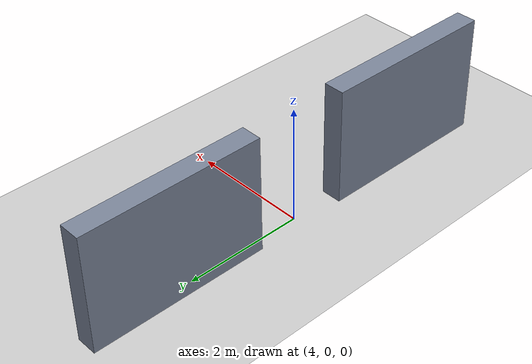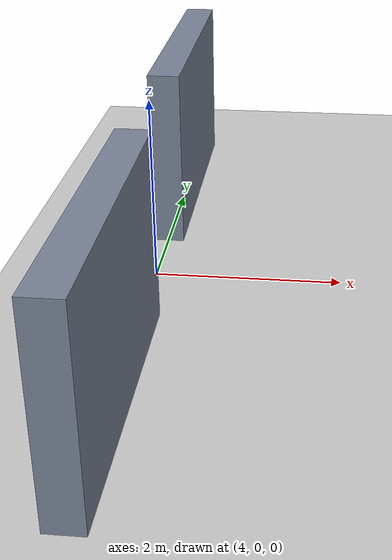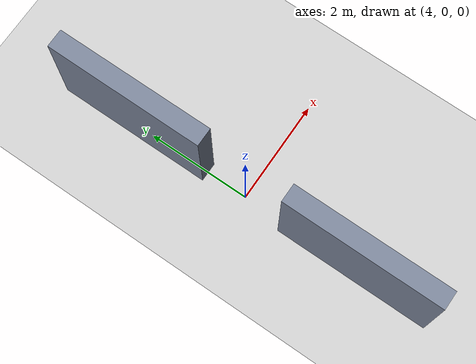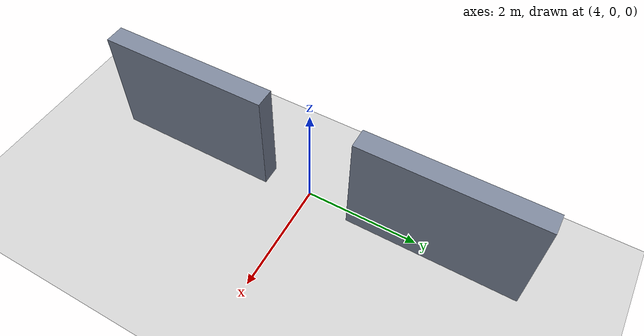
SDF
<?xml version="1.0" ?>
<sdf version="1.6">
  <world name="default">
    <physics type="ode"><max_step_size>0.01</max_step_size><real_time_factor>1</real_time_factor><real_time_update_rate>100</real_time_update_rate></physics>
    <gui><camera name="user_camera"><pose>4 -10 8 0 0.55 1.5707</pose></camera></gui>
    <light name="sun" type="directional"><pose>0 0 10 0 0 0</pose><diffuse>0.8 0.8 0.8 1</diffuse><specular>0.2 0.2 0.2 1</specular><direction>-0.3 0.2 -1</direction></light>
    <include><uri>model://ground_plane</uri></include>
    <model name="door_wall_upper">
      <static>true</static><pose>4 2.3 1 0 0 0</pose>
      <link name="wall"><collision name="collision"><geometry><box><size>0.35 3.0 2</size></box></geometry></collision><visual name="visual"><geometry><box><size>0.35 3.0 2</size></box></geometry><material><ambient>0.48 0.52 0.60 1</ambient><diffuse>0.48 0.52 0.60 1</diffuse></material></visual></link>
    </model>
    <model name="door_wall_lower">
      <static>true</static><pose>4 -2.3 1 0 0 0</pose>
      <link name="wall"><collision name="collision"><geometry><box><size>0.35 3.0 2</size></box></geometry></collision><visual name="visual"><geometry><box><size>0.35 3.0 2</size></box></geometry><material><ambient>0.48 0.52 0.60 1</ambient><diffuse>0.48 0.52 0.60 1</diffuse></material></visual></link>
    </model>
  </world>
</sdf>
